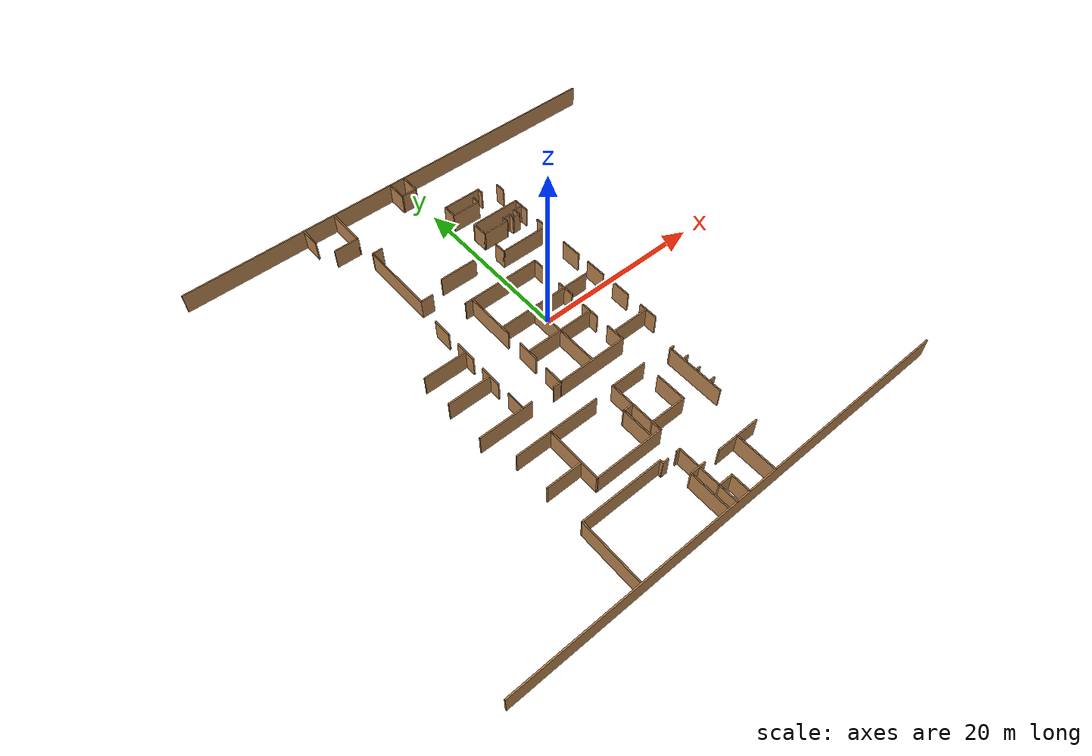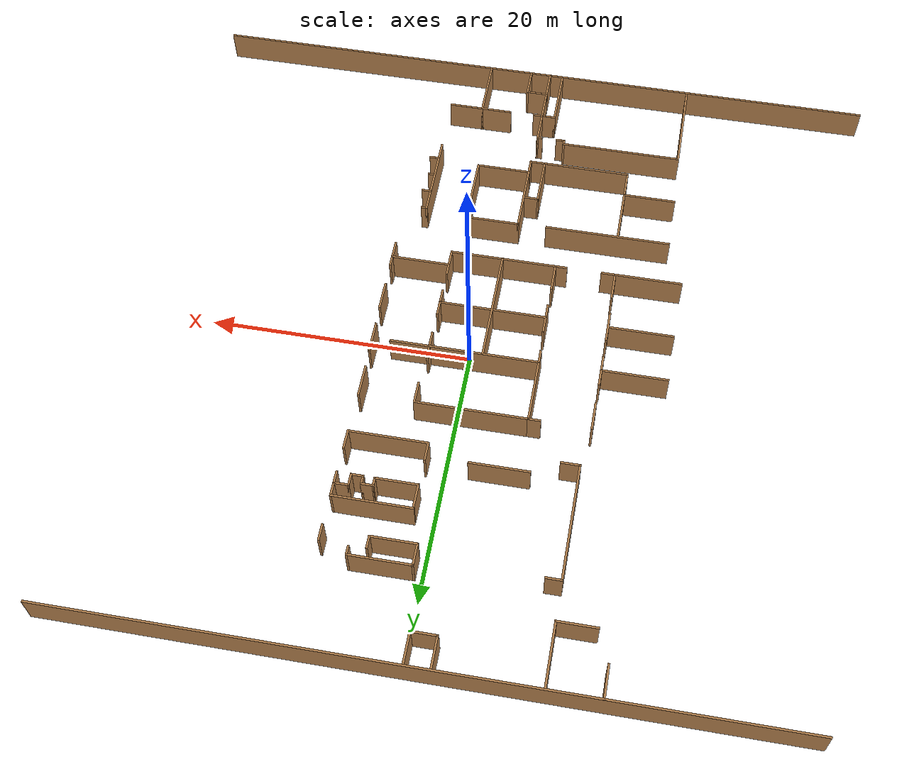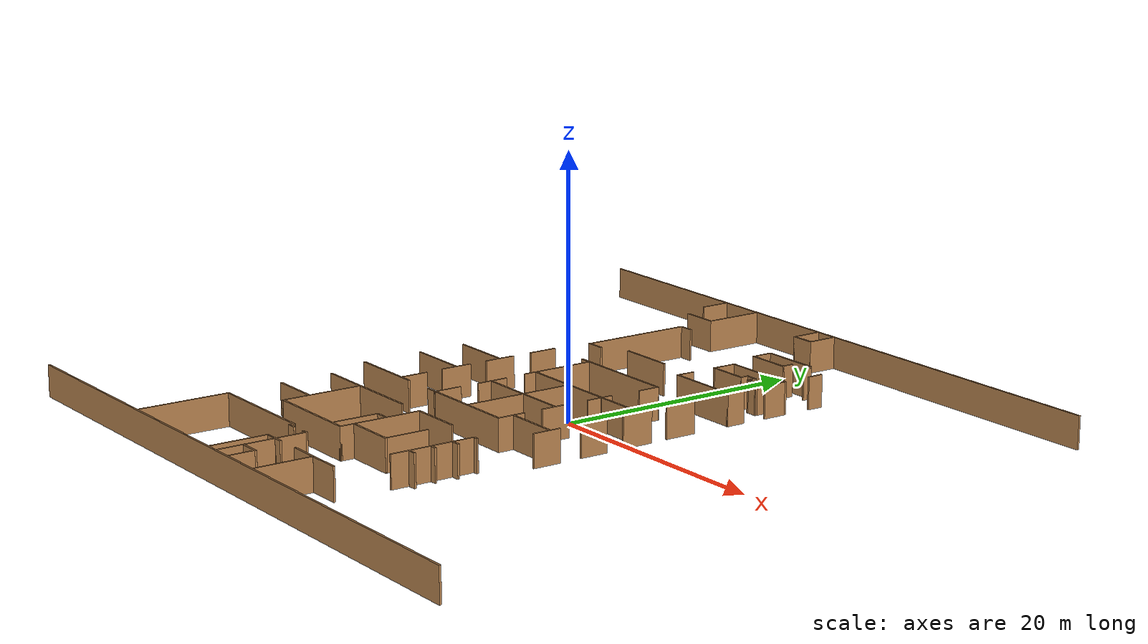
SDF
<sdf version="1.6">
 <model name="floor_plan">
  <pose>-1.19231 -1.13475 0 0 -0 0</pose>
  <link name="Wall_132">
   <collision name="Wall_132_Collision">
    <geometry><box><size>1.5 0.15 2.5</size></box></geometry>
    <pose>0 0 1.25 0 -0 0</pose>
   </collision>
   <visual name="Wall_132_Visual">
    <pose>0 0 1.25 0 -0 0</pose>
    <geometry><box><size>1.5 0.15 2.5</size></box></geometry>
    <material>
     <script><uri>file://media/materials/scripts/gazebo.material</uri><name>Gazebo/Wood</name></script>
     <ambient>1 1 1 1</ambient>
    </material>
   </visual>
   <pose>2.5583 10.705 0 0 0 -1.5708</pose>
  </link>
  <link name="Wall_133">
   <collision name="Wall_133_Collision">
    <geometry><box><size>6 0.15 2.5</size></box></geometry>
    <pose>0 0 1.25 0 -0 0</pose>
   </collision>
   <visual name="Wall_133_Visual">
    <pose>0 0 1.25 0 -0 0</pose>
    <geometry><box><size>6 0.15 2.5</size></box></geometry>
    <material>
     <script><uri>file://media/materials/scripts/gazebo.material</uri><name>Gazebo/Wood</name></script>
     <ambient>1 1 1 1</ambient>
    </material>
   </visual>
   <pose>5.4833 10.03 0 0 -0 0</pose>
  </link>
  <link name="Wall_134">
   <collision name="Wall_134_Collision">
    <geometry><box><size>1.5 0.15 2.5</size></box></geometry>
    <pose>0 0 1.25 0 -0 0</pose>
   </collision>
   <visual name="Wall_134_Visual">
    <pose>0 0 1.25 0 -0 0</pose>
    <geometry><box><size>1.5 0.15 2.5</size></box></geometry>
    <material>
     <script><uri>file://media/materials/scripts/gazebo.material</uri><name>Gazebo/Wood</name></script>
     <ambient>1 1 1 1</ambient>
    </material>
   </visual>
   <pose>8.4083 10.705 0 0 -0 1.5708</pose>
  </link>
  <link name="Wall_136">
   <collision name="Wall_136_Collision">
    <geometry><box><size>4.5 0.15 2.5</size></box></geometry>
    <pose>0 0 1.25 0 -0 0</pose>
   </collision>
   <visual name="Wall_136_Visual">
    <pose>0 0 1.25 0 -0 0</pose>
    <geometry><box><size>4.5 0.15 2.5</size></box></geometry>
    <material>
     <script><uri>file://media/materials/scripts/gazebo.material</uri><name>Gazebo/Wood</name></script>
     <ambient>1 1 1 1</ambient>
    </material>
   </visual>
   <pose>-2.72059 11.0775 0 0 -0 0</pose>
  </link>
  <link name="Wall_138">
   <collision name="Wall_138_Collision">
    <geometry><box><size>1.25 0.15 2.5</size></box></geometry>
    <pose>0 0 1.25 0 -0 0</pose>
   </collision>
   <visual name="Wall_138_Visual">
    <pose>0 0 1.25 0 -0 0</pose>
    <geometry><box><size>1.25 0.15 2.5</size></box></geometry>
    <material>
     <script><uri>file://media/materials/scripts/gazebo.material</uri><name>Gazebo/Wood</name></script>
     <ambient>1 1 1 1</ambient>
    </material>
   </visual>
   <pose>-7.75979 18.8072 0 0 -0 3.14159</pose>
  </link>
  <link name="Wall_139">
   <collision name="Wall_139_Collision">
    <geometry><box><size>9 0.15 2.5</size></box></geometry>
    <pose>0 0 1.25 0 -0 0</pose>
   </collision>
   <visual name="Wall_139_Visual">
    <pose>0 0 1.25 0 -0 0</pose>
    <geometry><box><size>9 0.15 2.5</size></box></geometry>
    <material>
     <script><uri>file://media/materials/scripts/gazebo.material</uri><name>Gazebo/Wood</name></script>
     <ambient>1 1 1 1</ambient>
    </material>
   </visual>
   <pose>-8.30979 14.3822 0 0 0 -1.5708</pose>
  </link>
  <link name="Wall_140">
   <collision name="Wall_140_Collision">
    <geometry><box><size>1.5 0.15 2.5</size></box></geometry>
    <pose>0 0 1.25 0 -0 0</pose>
   </collision>
   <visual name="Wall_140_Visual">
    <pose>0 0 1.25 0 -0 0</pose>
    <geometry><box><size>1.5 0.15 2.5</size></box></geometry>
    <material>
     <script><uri>file://media/materials/scripts/gazebo.material</uri><name>Gazebo/Wood</name></script>
     <ambient>1 1 1 1</ambient>
    </material>
   </visual>
   <pose>-7.63479 9.95716 0 0 -0 0</pose>
  </link>
  <link name="Wall_21">
   <collision name="Wall_21_Collision">
    <geometry><box><size>53.5 0.15 2.5</size></box></geometry>
    <pose>0 0 1.25 0 -0 0</pose>
   </collision>
   <visual name="Wall_21_Visual">
    <pose>0 0 1.25 0 -0 0</pose>
    <geometry><box><size>53.5 0.15 2.5</size></box></geometry>
    <material>
     <script><uri>file://media/materials/scripts/gazebo.material</uri><name>Gazebo/Wood</name></script>
     <ambient>1 1 1 1</ambient>
    </material>
   </visual>
   <pose>0.125 -26.4786 0 0 -0 3.14159</pose>
  </link>
  <link name="Wall_300">
   <collision name="Wall_300_Collision">
    <geometry><box><size>4.75 0.15 2.5</size></box></geometry>
    <pose>0 0 1.25 0 -0 0</pose>
   </collision>
   <visual name="Wall_300_Visual">
    <pose>0 0 1.25 0 -0 0</pose>
    <geometry><box><size>4.75 0.15 2.5</size></box></geometry>
    <material>
     <script><uri>file://media/materials/scripts/gazebo.material</uri><name>Gazebo/Wood</name></script>
     <ambient>1 1 1 1</ambient>
    </material>
   </visual>
   <pose>4.29396 -24.1538 0 0 -0 1.5708</pose>
  </link>
  <link name="Wall_302">
   <collision name="Wall_302_Collision">
    <geometry><box><size>2.5 0.15 2.5</size></box></geometry>
    <pose>0 0 1.25 0 -0 0</pose>
   </collision>
   <visual name="Wall_302_Visual">
    <pose>0 0 1.25 0 -0 0</pose>
    <geometry><box><size>2.5 0.15 2.5</size></box></geometry>
    <material>
     <script><uri>file://media/materials/scripts/gazebo.material</uri><name>Gazebo/Wood</name></script>
     <ambient>1 1 1 1</ambient>
    </material>
   </visual>
   <pose>3.11896 -21.8538 0 0 -0 3.14159</pose>
  </link>
  <link name="Wall_304">
   <collision name="Wall_304_Collision">
    <geometry><box><size>2.75 0.15 2.5</size></box></geometry>
    <pose>0 0 1.25 0 -0 0</pose>
   </collision>
   <visual name="Wall_304_Visual">
    <pose>0 0 1.25 0 -0 0</pose>
    <geometry><box><size>2.75 0.15 2.5</size></box></geometry>
    <material>
     <script><uri>file://media/materials/scripts/gazebo.material</uri><name>Gazebo/Wood</name></script>
     <ambient>1 1 1 1</ambient>
    </material>
   </visual>
   <pose>5.59396 -21.8538 0 0 -0 0</pose>
  </link>
  <link name="Wall_307">
   <collision name="Wall_307_Collision">
    <geometry><box><size>2.25 0.15 2.5</size></box></geometry>
    <pose>0 0 1.25 0 -0 0</pose>
   </collision>
   <visual name="Wall_307_Visual">
    <pose>0 0 1.25 0 -0 0</pose>
    <geometry><box><size>2.25 0.15 2.5</size></box></geometry>
    <material>
     <script><uri>file://media/materials/scripts/gazebo.material</uri><name>Gazebo/Wood</name></script>
     <ambient>1 1 1 1</ambient>
    </material>
   </visual>
   <pose>0.897617 -25.3855 0 0 -0 1.5708</pose>
  </link>
  <link name="Wall_308">
   <collision name="Wall_308_Collision">
    <geometry><box><size>1.75 0.15 2.5</size></box></geometry>
    <pose>0 0 1.25 0 -0 0</pose>
   </collision>
   <visual name="Wall_308_Visual">
    <pose>0 0 1.25 0 -0 0</pose>
    <geometry><box><size>1.75 0.15 2.5</size></box></geometry>
    <material>
     <script><uri>file://media/materials/scripts/gazebo.material</uri><name>Gazebo/Wood</name></script>
     <ambient>1 1 1 1</ambient>
    </material>
   </visual>
   <pose>0.097617 -24.3355 0 0 -0 3.14159</pose>
  </link>
  <link name="Wall_309">
   <collision name="Wall_309_Collision">
    <geometry><box><size>2.25 0.15 2.5</size></box></geometry>
    <pose>0 0 1.25 0 -0 0</pose>
   </collision>
   <visual name="Wall_309_Visual">
    <pose>0 0 1.25 0 -0 0</pose>
    <geometry><box><size>2.25 0.15 2.5</size></box></geometry>
    <material>
     <script><uri>file://media/materials/scripts/gazebo.material</uri><name>Gazebo/Wood</name></script>
     <ambient>1 1 1 1</ambient>
    </material>
   </visual>
   <pose>-0.702384 -25.3855 0 0 0 -1.5708</pose>
  </link>
  <link name="Wall_311">
   <collision name="Wall_311_Collision">
    <geometry><box><size>5 0.15 2.5</size></box></geometry>
    <pose>0 0 1.25 0 -0 0</pose>
   </collision>
   <visual name="Wall_311_Visual">
    <pose>0 0 1.25 0 -0 0</pose>
    <geometry><box><size>5 0.15 2.5</size></box></geometry>
    <material>
     <script><uri>file://media/materials/scripts/gazebo.material</uri><name>Gazebo/Wood</name></script>
     <ambient>1 1 1 1</ambient>
    </material>
   </visual>
   <pose>-0.702384 -21.9105 0 0 -0 1.5708</pose>
  </link>
  <link name="Wall_312">
   <collision name="Wall_312_Collision">
    <geometry><box><size>0.5 0.15 2.5</size></box></geometry>
    <pose>0 0 1.25 0 -0 0</pose>
   </collision>
   <visual name="Wall_312_Visual">
    <pose>0 0 1.25 0 -0 0</pose>
    <geometry><box><size>0.5 0.15 2.5</size></box></geometry>
    <material>
     <script><uri>file://media/materials/scripts/gazebo.material</uri><name>Gazebo/Wood</name></script>
     <ambient>1 1 1 1</ambient>
    </material>
   </visual>
   <pose>-0.877383 -19.4855 0 0 -0 3.14159</pose>
  </link>
  <link name="Wall_314">
   <collision name="Wall_314_Collision">
    <geometry><box><size>0.75 0.15 2.5</size></box></geometry>
    <pose>0 0 1.25 0 -0 0</pose>
   </collision>
   <visual name="Wall_314_Visual">
    <pose>0 0 1.25 0 -0 0</pose>
    <geometry><box><size>0.75 0.15 2.5</size></box></geometry>
    <material>
     <script><uri>file://media/materials/scripts/gazebo.material</uri><name>Gazebo/Wood</name></script>
     <ambient>1 1 1 1</ambient>
    </material>
   </visual>
   <pose>-2.59679 -19.5326 0 0 -0 3.14159</pose>
  </link>
  <link name="Wall_315">
   <collision name="Wall_315_Collision">
    <geometry><box><size>0.5 0.15 2.5</size></box></geometry>
    <pose>0 0 1.25 0 -0 0</pose>
   </collision>
   <visual name="Wall_315_Visual">
    <pose>0 0 1.25 0 -0 0</pose>
    <geometry><box><size>0.5 0.15 2.5</size></box></geometry>
    <material>
     <script><uri>file://media/materials/scripts/gazebo.material</uri><name>Gazebo/Wood</name></script>
     <ambient>1 1 1 1</ambient>
    </material>
   </visual>
   <pose>-2.89679 -19.3576 0 0 -0 1.5708</pose>
  </link>
  <link name="Wall_316">
   <collision name="Wall_316_Collision">
    <geometry><box><size>9.5 0.15 2.5</size></box></geometry>
    <pose>0 0 1.25 0 -0 0</pose>
   </collision>
   <visual name="Wall_316_Visual">
    <pose>0 0 1.25 0 -0 0</pose>
    <geometry><box><size>9.5 0.15 2.5</size></box></geometry>
    <material>
     <script><uri>file://media/materials/scripts/gazebo.material</uri><name>Gazebo/Wood</name></script>
     <ambient>1 1 1 1</ambient>
    </material>
   </visual>
   <pose>-7.57179 -19.1826 0 0 -0 3.14159</pose>
  </link>
  <link name="Wall_317">
   <collision name="Wall_317_Collision">
    <geometry><box><size>7.4 0.15 2.5</size></box></geometry>
    <pose>0 0 1.25 0 -0 0</pose>
   </collision>
   <visual name="Wall_317_Visual">
    <pose>0 0 1.25 0 -0 0</pose>
    <geometry><box><size>7.4 0.15 2.5</size></box></geometry>
    <material>
     <script><uri>file://media/materials/scripts/gazebo.material</uri><name>Gazebo/Wood</name></script>
     <ambient>1 1 1 1</ambient>
    </material>
   </visual>
   <pose>-12.2468 -22.8076 0 0 0 -1.5708</pose>
  </link>
  <link name="Wall_319">
   <collision name="Wall_319_Collision">
    <geometry><box><size>0.75 0.15 2.5</size></box></geometry>
    <pose>0 0 1.25 0 -0 0</pose>
   </collision>
   <visual name="Wall_319_Visual">
    <pose>0 0 1.25 0 -0 0</pose>
    <geometry><box><size>0.75 0.15 2.5</size></box></geometry>
    <material>
     <script><uri>file://media/materials/scripts/gazebo.material</uri><name>Gazebo/Wood</name></script>
     <ambient>1 1 1 1</ambient>
    </material>
   </visual>
   <pose>-0.344509 -21.9009 0 0 -0 0</pose>
  </link>
  <link name="Wall_400">
   <collision name="Wall_400_Collision">
    <geometry><box><size>0.5 0.15 2.5</size></box></geometry>
    <pose>0 0 1.25 0 -0 0</pose>
   </collision>
   <visual name="Wall_400_Visual">
    <pose>0 0 1.25 0 -0 0</pose>
    <geometry><box><size>0.5 0.15 2.5</size></box></geometry>
    <material>
     <script><uri>file://media/materials/scripts/gazebo.material</uri><name>Gazebo/Wood</name></script>
     <ambient>1 1 1 1</ambient>
    </material>
   </visual>
   <pose>7.00594 -10.7748 0 0 -0 3.14159</pose>
  </link>
  <link name="Wall_401">
   <collision name="Wall_401_Collision">
    <geometry><box><size>6.75 0.15 2.5</size></box></geometry>
    <pose>0 0 1.25 0 -0 0</pose>
   </collision>
   <visual name="Wall_401_Visual">
    <pose>0 0 1.25 0 -0 0</pose>
    <geometry><box><size>6.75 0.15 2.5</size></box></geometry>
    <material>
     <script><uri>file://media/materials/scripts/gazebo.material</uri><name>Gazebo/Wood</name></script>
     <ambient>1 1 1 1</ambient>
    </material>
   </visual>
   <pose>6.83094 -14.0748 0 0 0 -1.5708</pose>
  </link>
  <link name="Wall_403">
   <collision name="Wall_403_Collision">
    <geometry><box><size>0.75 0.15 2.5</size></box></geometry>
    <pose>0 0 1.25 0 -0 0</pose>
   </collision>
   <visual name="Wall_403_Visual">
    <pose>0 0 1.25 0 -0 0</pose>
    <geometry><box><size>0.75 0.15 2.5</size></box></geometry>
    <material>
     <script><uri>file://media/materials/scripts/gazebo.material</uri><name>Gazebo/Wood</name></script>
     <ambient>1 1 1 1</ambient>
    </material>
   </visual>
   <pose>7.16166 -12.4989 0 0 -0 0</pose>
  </link>
  <link name="Wall_406">
   <collision name="Wall_406_Collision">
    <geometry><box><size>0.75 0.15 2.5</size></box></geometry>
    <pose>0 0 1.25 0 -0 0</pose>
   </collision>
   <visual name="Wall_406_Visual">
    <pose>0 0 1.25 0 -0 0</pose>
    <geometry><box><size>0.75 0.15 2.5</size></box></geometry>
    <material>
     <script><uri>file://media/materials/scripts/gazebo.material</uri><name>Gazebo/Wood</name></script>
     <ambient>1 1 1 1</ambient>
    </material>
   </visual>
   <pose>7.19359 -15.9791 0 0 -0 0</pose>
  </link>
  <link name="Wall_408">
   <collision name="Wall_408_Collision">
    <geometry><box><size>0.5 0.15 2.5</size></box></geometry>
    <pose>0 0 1.25 0 -0 0</pose>
   </collision>
   <visual name="Wall_408_Visual">
    <pose>0 0 1.25 0 -0 0</pose>
    <geometry><box><size>0.5 0.15 2.5</size></box></geometry>
    <material>
     <script><uri>file://media/materials/scripts/gazebo.material</uri><name>Gazebo/Wood</name></script>
     <ambient>1 1 1 1</ambient>
    </material>
   </visual>
   <pose>7.13244 -14.2231 0 0 -0 0</pose>
  </link>
  <link name="Wall_464">
   <collision name="Wall_464_Collision">
    <geometry><box><size>2.5 0.15 2.5</size></box></geometry>
    <pose>0 0 1.25 0 -0 0</pose>
   </collision>
   <visual name="Wall_464_Visual">
    <pose>0 0 1.25 0 -0 0</pose>
    <geometry><box><size>2.5 0.15 2.5</size></box></geometry>
    <material>
     <script><uri>file://media/materials/scripts/gazebo.material</uri><name>Gazebo/Wood</name></script>
     <ambient>1 1 1 1</ambient>
    </material>
   </visual>
   <pose>8.34426 5.73154 0 0 0 -1.5708</pose>
  </link>
  <link name="Wall_466">
   <collision name="Wall_466_Collision">
    <geometry><box><size>2.5 0.15 2.5</size></box></geometry>
    <pose>0 0 1.25 0 -0 0</pose>
   </collision>
   <visual name="Wall_466_Visual">
    <pose>0 0 1.25 0 -0 0</pose>
    <geometry><box><size>2.5 0.15 2.5</size></box></geometry>
    <material>
     <script><uri>file://media/materials/scripts/gazebo.material</uri><name>Gazebo/Wood</name></script>
     <ambient>1 1 1 1</ambient>
    </material>
   </visual>
   <pose>8.3942 1.87502 0 0 0 -1.5708</pose>
  </link>
  <link name="Wall_468">
   <collision name="Wall_468_Collision">
    <geometry><box><size>2.25 0.15 2.5</size></box></geometry>
    <pose>0 0 1.25 0 -0 0</pose>
   </collision>
   <visual name="Wall_468_Visual">
    <pose>0 0 1.25 0 -0 0</pose>
    <geometry><box><size>2.25 0.15 2.5</size></box></geometry>
    <material>
     <script><uri>file://media/materials/scripts/gazebo.material</uri><name>Gazebo/Wood</name></script>
     <ambient>1 1 1 1</ambient>
    </material>
   </visual>
   <pose>8.45806 -1.92713 0 0 0 -1.5708</pose>
  </link>
  <link name="Wall_470">
   <collision name="Wall_470_Collision">
    <geometry><box><size>2.25 0.15 2.5</size></box></geometry>
    <pose>0 0 1.25 0 -0 0</pose>
   </collision>
   <visual name="Wall_470_Visual">
    <pose>0 0 1.25 0 -0 0</pose>
    <geometry><box><size>2.25 0.15 2.5</size></box></geometry>
    <material>
     <script><uri>file://media/materials/scripts/gazebo.material</uri><name>Gazebo/Wood</name></script>
     <ambient>1 1 1 1</ambient>
    </material>
   </visual>
   <pose>8.48999 -5.91814 0 0 0 -1.5708</pose>
  </link>
  <link name="Wall_477">
   <collision name="Wall_477_Collision">
    <geometry><box><size>2.25 0.15 2.5</size></box></geometry>
    <pose>0 0 1.25 0 -0 0</pose>
   </collision>
   <visual name="Wall_477_Visual">
    <pose>0 0 1.25 0 -0 0</pose>
    <geometry><box><size>2.25 0.15 2.5</size></box></geometry>
    <material>
     <script><uri>file://media/materials/scripts/gazebo.material</uri><name>Gazebo/Wood</name></script>
     <ambient>1 1 1 1</ambient>
    </material>
   </visual>
   <pose>4.05199 -5.82235 0 0 0 -1.5708</pose>
  </link>
  <link name="Wall_478">
   <collision name="Wall_478_Collision">
    <geometry><box><size>8.25 0.15 2.5</size></box></geometry>
    <pose>0 0 1.25 0 -0 0</pose>
   </collision>
   <visual name="Wall_478_Visual">
    <pose>0 0 1.25 0 -0 0</pose>
    <geometry><box><size>8.25 0.15 2.5</size></box></geometry>
    <material>
     <script><uri>file://media/materials/scripts/gazebo.material</uri><name>Gazebo/Wood</name></script>
     <ambient>1 1 1 1</ambient>
    </material>
   </visual>
   <pose>0.001989 -6.87235 0 0 -0 3.14159</pose>
  </link>
  <link name="Wall_479">
   <collision name="Wall_479_Collision">
    <geometry><box><size>2.25 0.15 2.5</size></box></geometry>
    <pose>0 0 1.25 0 -0 0</pose>
   </collision>
   <visual name="Wall_479_Visual">
    <pose>0 0 1.25 0 -0 0</pose>
    <geometry><box><size>2.25 0.15 2.5</size></box></geometry>
    <material>
     <script><uri>file://media/materials/scripts/gazebo.material</uri><name>Gazebo/Wood</name></script>
     <ambient>1 1 1 1</ambient>
    </material>
   </visual>
   <pose>-4.04801 -5.82235 0 0 -0 1.5708</pose>
  </link>
  <link name="Wall_481">
   <collision name="Wall_481_Collision">
    <geometry><box><size>2.25 0.15 2.5</size></box></geometry>
    <pose>0 0 1.25 0 -0 0</pose>
   </collision>
   <visual name="Wall_481_Visual">
    <pose>0 0 1.25 0 -0 0</pose>
    <geometry><box><size>2.25 0.15 2.5</size></box></geometry>
    <material>
     <script><uri>file://media/materials/scripts/gazebo.material</uri><name>Gazebo/Wood</name></script>
     <ambient>1 1 1 1</ambient>
    </material>
   </visual>
   <pose>4.05199 -2.06209 0 0 -0 1.5708</pose>
  </link>
  <link name="Wall_483">
   <collision name="Wall_483_Collision">
    <geometry><box><size>1.25 0.15 2.5</size></box></geometry>
    <pose>0 0 1.25 0 -0 0</pose>
   </collision>
   <visual name="Wall_483_Visual">
    <pose>0 0 1.25 0 -0 0</pose>
    <geometry><box><size>1.25 0.15 2.5</size></box></geometry>
    <material>
     <script><uri>file://media/materials/scripts/gazebo.material</uri><name>Gazebo/Wood</name></script>
     <ambient>1 1 1 1</ambient>
    </material>
   </visual>
   <pose>4.08392 1.33313 0 0 -0 1.5708</pose>
  </link>
  <link name="Wall_487">
   <collision name="Wall_487_Collision">
    <geometry><box><size>2.5 0.15 2.5</size></box></geometry>
    <pose>0 0 1.25 0 -0 0</pose>
   </collision>
   <visual name="Wall_487_Visual">
    <pose>0 0 1.25 0 -0 0</pose>
    <geometry><box><size>2.5 0.15 2.5</size></box></geometry>
    <material>
     <script><uri>file://media/materials/scripts/gazebo.material</uri><name>Gazebo/Wood</name></script>
     <ambient>1 1 1 1</ambient>
    </material>
   </visual>
   <pose>-4.02581 -1.96902 0 0 -0 1.5708</pose>
  </link>
  <link name="Wall_489">
   <collision name="Wall_489_Collision">
    <geometry><box><size>6 0.15 2.5</size></box></geometry>
    <pose>0 0 1.25 0 -0 0</pose>
   </collision>
   <visual name="Wall_489_Visual">
    <pose>0 0 1.25 0 -0 0</pose>
    <geometry><box><size>6 0.15 2.5</size></box></geometry>
    <material>
     <script><uri>file://media/materials/scripts/gazebo.material</uri><name>Gazebo/Wood</name></script>
     <ambient>1 1 1 1</ambient>
    </material>
   </visual>
   <pose>-4.12159 3.93162 0 0 -0 1.5708</pose>
  </link>
  <link name="Wall_490">
   <collision name="Wall_490_Collision">
    <geometry><box><size>8.5 0.15 2.5</size></box></geometry>
    <pose>0 0 1.25 0 -0 0</pose>
   </collision>
   <visual name="Wall_490_Visual">
    <pose>0 0 1.25 0 -0 0</pose>
    <geometry><box><size>8.5 0.15 2.5</size></box></geometry>
    <material>
     <script><uri>file://media/materials/scripts/gazebo.material</uri><name>Gazebo/Wood</name></script>
     <ambient>1 1 1 1</ambient>
    </material>
   </visual>
   <pose>0.053406 6.85663 0 0 -0 0</pose>
  </link>
  <link name="Wall_491">
   <collision name="Wall_491_Collision">
    <geometry><box><size>1.75 0.15 2.5</size></box></geometry>
    <pose>0 0 1.25 0 -0 0</pose>
   </collision>
   <visual name="Wall_491_Visual">
    <pose>0 0 1.25 0 -0 0</pose>
    <geometry><box><size>1.75 0.15 2.5</size></box></geometry>
    <material>
     <script><uri>file://media/materials/scripts/gazebo.material</uri><name>Gazebo/Wood</name></script>
     <ambient>1 1 1 1</ambient>
    </material>
   </visual>
   <pose>4.22841 6.05662 0 0 0 -1.5708</pose>
  </link>
  <link name="Wall_493">
   <collision name="Wall_493_Collision">
    <geometry><box><size>1 0.15 2.5</size></box></geometry>
    <pose>0 0 1.25 0 -0 0</pose>
   </collision>
   <visual name="Wall_493_Visual">
    <pose>0 0 1.25 0 -0 0</pose>
    <geometry><box><size>1 0.15 2.5</size></box></geometry>
    <material>
     <script><uri>file://media/materials/scripts/gazebo.material</uri><name>Gazebo/Wood</name></script>
     <ambient>1 1 1 1</ambient>
    </material>
   </visual>
   <pose>4.08392 2.30813 0 0 -0 1.5708</pose>
  </link>
  <link name="Wall_495">
   <collision name="Wall_495_Collision">
    <geometry><box><size>11.25 0.15 2.5</size></box></geometry>
    <pose>0 0 1.25 0 -0 0</pose>
   </collision>
   <visual name="Wall_495_Visual">
    <pose>0 0 1.25 0 -0 0</pose>
    <geometry><box><size>11.25 0.15 2.5</size></box></geometry>
    <material>
     <script><uri>file://media/materials/scripts/gazebo.material</uri><name>Gazebo/Wood</name></script>
     <ambient>1 1 1 1</ambient>
    </material>
   </visual>
   <pose>1.46033 1.96447 0 0 -0 0</pose>
  </link>
  <link name="Wall_498">
   <collision name="Wall_498_Collision">
    <geometry><box><size>8.15 0.15 2.5</size></box></geometry>
    <pose>0 0 1.25 0 -0 0</pose>
   </collision>
   <visual name="Wall_498_Visual">
    <pose>0 0 1.25 0 -0 0</pose>
    <geometry><box><size>8.15 0.15 2.5</size></box></geometry>
    <material>
     <script><uri>file://media/materials/scripts/gazebo.material</uri><name>Gazebo/Wood</name></script>
     <ambient>1 1 1 1</ambient>
    </material>
   </visual>
   <pose>0.006118 -2.05847 0 0 -0 0</pose>
  </link>
  <link name="Wall_500">
   <collision name="Wall_500_Collision">
    <geometry><box><size>8.9 0.15 2.5</size></box></geometry>
    <pose>0 0 1.25 0 -0 0</pose>
   </collision>
   <visual name="Wall_500_Visual">
    <pose>0 0 1.25 0 -0 0</pose>
    <geometry><box><size>8.9 0.15 2.5</size></box></geometry>
    <material>
     <script><uri>file://media/materials/scripts/gazebo.material</uri><name>Gazebo/Wood</name></script>
     <ambient>1 1 1 1</ambient>
    </material>
   </visual>
   <pose>0.079028 -2.46115 0 0 -0 1.5708</pose>
  </link>
  <link name="Wall_502">
   <collision name="Wall_502_Collision">
    <geometry><box><size>9.75 0.15 2.5</size></box></geometry>
    <pose>0 0 1.25 0 -0 0</pose>
   </collision>
   <visual name="Wall_502_Visual">
    <pose>0 0 1.25 0 -0 0</pose>
    <geometry><box><size>9.75 0.15 2.5</size></box></geometry>
    <material>
     <script><uri>file://media/materials/scripts/gazebo.material</uri><name>Gazebo/Wood</name></script>
     <ambient>1 1 1 1</ambient>
    </material>
   </visual>
   <pose>-7.61295 -10.5084 0 0 -0 0</pose>
  </link>
  <link name="Wall_506">
   <collision name="Wall_506_Collision">
    <geometry><box><size>3.5 0.15 2.5</size></box></geometry>
    <pose>0 0 1.25 0 -0 0</pose>
   </collision>
   <visual name="Wall_506_Visual">
    <pose>0 0 1.25 0 -0 0</pose>
    <geometry><box><size>3.5 0.15 2.5</size></box></geometry>
    <material>
     <script><uri>file://media/materials/scripts/gazebo.material</uri><name>Gazebo/Wood</name></script>
     <ambient>1 1 1 1</ambient>
    </material>
   </visual>
   <pose>3.53898 -14.1035 0 0 0 -1.5708</pose>
  </link>
  <link name="Wall_507">
   <collision name="Wall_507_Collision">
    <geometry><box><size>4.25 0.15 2.5</size></box></geometry>
    <pose>0 0 1.25 0 -0 0</pose>
   </collision>
   <visual name="Wall_507_Visual">
    <pose>0 0 1.25 0 -0 0</pose>
    <geometry><box><size>4.25 0.15 2.5</size></box></geometry>
    <material>
     <script><uri>file://media/materials/scripts/gazebo.material</uri><name>Gazebo/Wood</name></script>
     <ambient>1 1 1 1</ambient>
    </material>
   </visual>
   <pose>1.48898 -15.7785 0 0 -0 3.14159</pose>
  </link>
  <link name="Wall_508">
   <collision name="Wall_508_Collision">
    <geometry><box><size>1.25 0.15 2.5</size></box></geometry>
    <pose>0 0 1.25 0 -0 0</pose>
   </collision>
   <visual name="Wall_508_Visual">
    <pose>0 0 1.25 0 -0 0</pose>
    <geometry><box><size>1.25 0.15 2.5</size></box></geometry>
    <material>
     <script><uri>file://media/materials/scripts/gazebo.material</uri><name>Gazebo/Wood</name></script>
     <ambient>1 1 1 1</ambient>
    </material>
   </visual>
   <pose>-0.561019 -16.3285 0 0 0 -1.5708</pose>
  </link>
  <link name="Wall_509">
   <collision name="Wall_509_Collision">
    <geometry><box><size>8 0.15 2.5</size></box></geometry>
    <pose>0 0 1.25 0 -0 0</pose>
   </collision>
   <visual name="Wall_509_Visual">
    <pose>0 0 1.25 0 -0 0</pose>
    <geometry><box><size>8 0.15 2.5</size></box></geometry>
    <material>
     <script><uri>file://media/materials/scripts/gazebo.material</uri><name>Gazebo/Wood</name></script>
     <ambient>1 1 1 1</ambient>
    </material>
   </visual>
   <pose>-4.48602 -16.8785 0 0 -0 3.14159</pose>
  </link>
  <link name="Wall_510">
   <collision name="Wall_510_Collision">
    <geometry><box><size>6.5 0.15 2.5</size></box></geometry>
    <pose>0 0 1.25 0 -0 0</pose>
   </collision>
   <visual name="Wall_510_Visual">
    <pose>0 0 1.25 0 -0 0</pose>
    <geometry><box><size>6.5 0.15 2.5</size></box></geometry>
    <material>
     <script><uri>file://media/materials/scripts/gazebo.material</uri><name>Gazebo/Wood</name></script>
     <ambient>1 1 1 1</ambient>
    </material>
   </visual>
   <pose>-8.41102 -13.7035 0 0 -0 1.5708</pose>
  </link>
  <link name="Wall_514">
   <collision name="Wall_514_Collision">
    <geometry><box><size>4.1 0.15 2.5</size></box></geometry>
    <pose>0 0 1.25 0 -0 0</pose>
   </collision>
   <visual name="Wall_514_Visual">
    <pose>0 0 1.25 0 -0 0</pose>
    <geometry><box><size>4.1 0.15 2.5</size></box></geometry>
    <material>
     <script><uri>file://media/materials/scripts/gazebo.material</uri><name>Gazebo/Wood</name></script>
     <ambient>1 1 1 1</ambient>
    </material>
   </visual>
   <pose>-10.4175 -14.7536 0 0 -0 3.14159</pose>
  </link>
  <link name="Wall_517">
   <collision name="Wall_517_Collision">
    <geometry><box><size>5.5 0.15 2.5</size></box></geometry>
    <pose>0 0 1.25 0 -0 0</pose>
   </collision>
   <visual name="Wall_517_Visual">
    <pose>0 0 1.25 0 -0 0</pose>
    <geometry><box><size>5.5 0.15 2.5</size></box></geometry>
    <material>
     <script><uri>file://media/materials/scripts/gazebo.material</uri><name>Gazebo/Wood</name></script>
     <ambient>1 1 1 1</ambient>
    </material>
   </visual>
   <pose>-0.561019 -13.1035 0 0 -0 1.5708</pose>
  </link>
  <link name="Wall_518">
   <collision name="Wall_518_Collision">
    <geometry><box><size>4.25 0.15 2.5</size></box></geometry>
    <pose>0 0 1.25 0 -0 0</pose>
   </collision>
   <visual name="Wall_518_Visual">
    <pose>0 0 1.25 0 -0 0</pose>
    <geometry><box><size>4.25 0.15 2.5</size></box></geometry>
    <material>
     <script><uri>file://media/materials/scripts/gazebo.material</uri><name>Gazebo/Wood</name></script>
     <ambient>1 1 1 1</ambient>
    </material>
   </visual>
   <pose>1.48898 -10.4285 0 0 -0 0</pose>
  </link>
  <link name="Wall_521">
   <collision name="Wall_521_Collision">
    <geometry><box><size>3.75 0.15 2.5</size></box></geometry>
    <pose>0 0 1.25 0 -0 0</pose>
   </collision>
   <visual name="Wall_521_Visual">
    <pose>0 0 1.25 0 -0 0</pose>
    <geometry><box><size>3.75 0.15 2.5</size></box></geometry>
    <material>
     <script><uri>file://media/materials/scripts/gazebo.material</uri><name>Gazebo/Wood</name></script>
     <ambient>1 1 1 1</ambient>
    </material>
   </visual>
   <pose>-1.68838 -14.9663 0 0 0 -1.5708</pose>
  </link>
  <link name="Wall_523">
   <collision name="Wall_523_Collision">
    <geometry><box><size>1.25 0.15 2.5</size></box></geometry>
    <pose>0 0 1.25 0 -0 0</pose>
   </collision>
   <visual name="Wall_523_Visual">
    <pose>0 0 1.25 0 -0 0</pose>
    <geometry><box><size>1.25 0.15 2.5</size></box></geometry>
    <material>
     <script><uri>file://media/materials/scripts/gazebo.material</uri><name>Gazebo/Wood</name></script>
     <ambient>1 1 1 1</ambient>
    </material>
   </visual>
   <pose>-1.13838 -13.1663 0 0 -0 0</pose>
  </link>
  <link name="Wall_525">
   <collision name="Wall_525_Collision">
    <geometry><box><size>1 0.15 2.5</size></box></geometry>
    <pose>0 0 1.25 0 -0 0</pose>
   </collision>
   <visual name="Wall_525_Visual">
    <pose>0 0 1.25 0 -0 0</pose>
    <geometry><box><size>1 0.15 2.5</size></box></geometry>
    <material>
     <script><uri>file://media/materials/scripts/gazebo.material</uri><name>Gazebo/Wood</name></script>
     <ambient>1 1 1 1</ambient>
    </material>
   </visual>
   <pose>-4.54659 6.85663 0 0 -0 3.14159</pose>
  </link>
  <link name="Wall_565">
   <collision name="Wall_565_Collision">
    <geometry><box><size>6.25 0.15 2.5</size></box></geometry>
    <pose>0 0 1.25 0 -0 0</pose>
   </collision>
   <visual name="Wall_565_Visual">
    <pose>0 0 1.25 0 -0 0</pose>
    <geometry><box><size>6.25 0.15 2.5</size></box></geometry>
    <material>
     <script><uri>file://media/materials/scripts/gazebo.material</uri><name>Gazebo/Wood</name></script>
     <ambient>1 1 1 1</ambient>
    </material>
   </visual>
   <pose>-10.7101 -6.86803 0 0 -0 0</pose>
  </link>
  <link name="Wall_567">
   <collision name="Wall_567_Collision">
    <geometry><box><size>1 0.15 2.5</size></box></geometry>
    <pose>0 0 1.25 0 -0 0</pose>
   </collision>
   <visual name="Wall_567_Visual">
    <pose>0 0 1.25 0 -0 0</pose>
    <geometry><box><size>1 0.15 2.5</size></box></geometry>
    <material>
     <script><uri>file://media/materials/scripts/gazebo.material</uri><name>Gazebo/Wood</name></script>
     <ambient>1 1 1 1</ambient>
    </material>
   </visual>
   <pose>-4.47301 -6.87235 0 0 -0 3.14159</pose>
  </link>
  <link name="Wall_570">
   <collision name="Wall_570_Collision">
    <geometry><box><size>2.25 0.15 2.5</size></box></geometry>
    <pose>0 0 1.25 0 -0 0</pose>
   </collision>
   <visual name="Wall_570_Visual">
    <pose>0 0 1.25 0 -0 0</pose>
    <geometry><box><size>2.25 0.15 2.5</size></box></geometry>
    <material>
     <script><uri>file://media/materials/scripts/gazebo.material</uri><name>Gazebo/Wood</name></script>
     <ambient>1 1 1 1</ambient>
    </material>
   </visual>
   <pose>-8.718 5.79857 0 0 0 -1.5708</pose>
  </link>
  <link name="Wall_572">
   <collision name="Wall_572_Collision">
    <geometry><box><size>2.5 0.15 2.5</size></box></geometry>
    <pose>0 0 1.25 0 -0 0</pose>
   </collision>
   <visual name="Wall_572_Visual">
    <pose>0 0 1.25 0 -0 0</pose>
    <geometry><box><size>2.5 0.15 2.5</size></box></geometry>
    <material>
     <script><uri>file://media/materials/scripts/gazebo.material</uri><name>Gazebo/Wood</name></script>
     <ambient>1 1 1 1</ambient>
    </material>
   </visual>
   <pose>-8.74202 1.91202 0 0 0 -1.5708</pose>
  </link>
  <link name="Wall_574">
   <collision name="Wall_574_Collision">
    <geometry><box><size>2.5 0.15 2.5</size></box></geometry>
    <pose>0 0 1.25 0 -0 0</pose>
   </collision>
   <visual name="Wall_574_Visual">
    <pose>0 0 1.25 0 -0 0</pose>
    <geometry><box><size>2.5 0.15 2.5</size></box></geometry>
    <material>
     <script><uri>file://media/materials/scripts/gazebo.material</uri><name>Gazebo/Wood</name></script>
     <ambient>1 1 1 1</ambient>
    </material>
   </visual>
   <pose>-8.74318 -2.02448 0 0 0 -1.5708</pose>
  </link>
  <link name="Wall_579">
   <collision name="Wall_579_Collision">
    <geometry><box><size>2.25 0.15 2.5</size></box></geometry>
    <pose>0 0 1.25 0 -0 0</pose>
   </collision>
   <visual name="Wall_579_Visual">
    <pose>0 0 1.25 0 -0 0</pose>
    <geometry><box><size>2.25 0.15 2.5</size></box></geometry>
    <material>
     <script><uri>file://media/materials/scripts/gazebo.material</uri><name>Gazebo/Wood</name></script>
     <ambient>1 1 1 1</ambient>
    </material>
   </visual>
   <pose>-8.66602 -5.78721 0 0 -0 1.5708</pose>
  </link>
  <link name="Wall_581">
   <collision name="Wall_581_Collision">
    <geometry><box><size>5 0.15 2.5</size></box></geometry>
    <pose>0 0 1.25 0 -0 0</pose>
   </collision>
   <visual name="Wall_581_Visual">
    <pose>0 0 1.25 0 -0 0</pose>
    <geometry><box><size>5 0.15 2.5</size></box></geometry>
    <material>
     <script><uri>file://media/materials/scripts/gazebo.material</uri><name>Gazebo/Wood</name></script>
     <ambient>1 1 1 1</ambient>
    </material>
   </visual>
   <pose>-11.2426 -1.9871 0 0 -0 3.14159</pose>
  </link>
  <link name="Wall_583">
   <collision name="Wall_583_Collision">
    <geometry><box><size>5.05 0.15 2.5</size></box></geometry>
    <pose>0 0 1.25 0 -0 0</pose>
   </collision>
   <visual name="Wall_583_Visual">
    <pose>0 0 1.25 0 -0 0</pose>
    <geometry><box><size>5.05 0.15 2.5</size></box></geometry>
    <material>
     <script><uri>file://media/materials/scripts/gazebo.material</uri><name>Gazebo/Wood</name></script>
     <ambient>1 1 1 1</ambient>
    </material>
   </visual>
   <pose>-11.2171 1.87783 0 0 -0 3.14159</pose>
  </link>
  <link name="Wall_585">
   <collision name="Wall_585_Collision">
    <geometry><box><size>4.5 0.15 2.5</size></box></geometry>
    <pose>0 0 1.25 0 -0 0</pose>
   </collision>
   <visual name="Wall_585_Visual">
    <pose>0 0 1.25 0 -0 0</pose>
    <geometry><box><size>4.5 0.15 2.5</size></box></geometry>
    <material>
     <script><uri>file://media/materials/scripts/gazebo.material</uri><name>Gazebo/Wood</name></script>
     <ambient>1 1 1 1</ambient>
    </material>
   </visual>
   <pose>6.31447 -5.6309 0 0 -0 0</pose>
  </link>
  <link name="Wall_66">
   <collision name="Wall_66_Collision">
    <geometry><box><size>2.5 0.15 2.5</size></box></geometry>
    <pose>0 0 1.25 0 -0 0</pose>
   </collision>
   <visual name="Wall_66_Visual">
    <pose>0 0 1.25 0 -0 0</pose>
    <geometry><box><size>2.5 0.15 2.5</size></box></geometry>
    <material>
     <script><uri>file://media/materials/scripts/gazebo.material</uri><name>Gazebo/Wood</name></script>
     <ambient>1 1 1 1</ambient>
    </material>
   </visual>
   <pose>-12.1543 25.2869 0 0 -0 1.5708</pose>
  </link>
  <link name="Wall_7">
   <collision name="Wall_7_Collision">
    <geometry><box><size>53.5 0.15 2.5</size></box></geometry>
    <pose>0 0 1.25 0 -0 0</pose>
   </collision>
   <visual name="Wall_7_Visual">
    <pose>0 0 1.25 0 -0 0</pose>
    <geometry><box><size>53.5 0.15 2.5</size></box></geometry>
    <material>
     <script><uri>file://media/materials/scripts/gazebo.material</uri><name>Gazebo/Wood</name></script>
     <ambient>1 1 1 1</ambient>
    </material>
   </visual>
   <pose>0.125 26.4714 0 0 -0 0</pose>
  </link>
  <link name="Wall_70">
   <collision name="Wall_70_Collision">
    <geometry><box><size>3 0.15 2.5</size></box></geometry>
    <pose>0 0 1.25 0 -0 0</pose>
   </collision>
   <visual name="Wall_70_Visual">
    <pose>0 0 1.25 0 -0 0</pose>
    <geometry><box><size>3 0.15 2.5</size></box></geometry>
    <material>
     <script><uri>file://media/materials/scripts/gazebo.material</uri><name>Gazebo/Wood</name></script>
     <ambient>1 1 1 1</ambient>
    </material>
   </visual>
   <pose>-9.74617 21.7481 0 0 -0 0</pose>
  </link>
  <link name="Wall_71">
   <collision name="Wall_71_Collision">
    <geometry><box><size>4.75 0.15 2.5</size></box></geometry>
    <pose>0 0 1.25 0 -0 0</pose>
   </collision>
   <visual name="Wall_71_Visual">
    <pose>0 0 1.25 0 -0 0</pose>
    <geometry><box><size>4.75 0.15 2.5</size></box></geometry>
    <material>
     <script><uri>file://media/materials/scripts/gazebo.material</uri><name>Gazebo/Wood</name></script>
     <ambient>1 1 1 1</ambient>
    </material>
   </visual>
   <pose>-8.32117 24.0481 0 0 -0 1.5708</pose>
  </link>
  <link name="Wall_73">
   <collision name="Wall_73_Collision">
    <geometry><box><size>2.5 0.15 2.5</size></box></geometry>
    <pose>0 0 1.25 0 -0 0</pose>
   </collision>
   <visual name="Wall_73_Visual">
    <pose>0 0 1.25 0 -0 0</pose>
    <geometry><box><size>2.5 0.15 2.5</size></box></geometry>
    <material>
     <script><uri>file://media/materials/scripts/gazebo.material</uri><name>Gazebo/Wood</name></script>
     <ambient>1 1 1 1</ambient>
    </material>
   </visual>
   <pose>-0.840384 25.267 0 0 0 -1.5708</pose>
  </link>
  <link name="Wall_74">
   <collision name="Wall_74_Collision">
    <geometry><box><size>2 0.15 2.5</size></box></geometry>
    <pose>0 0 1.25 0 -0 0</pose>
   </collision>
   <visual name="Wall_74_Visual">
    <pose>0 0 1.25 0 -0 0</pose>
    <geometry><box><size>2 0.15 2.5</size></box></geometry>
    <material>
     <script><uri>file://media/materials/scripts/gazebo.material</uri><name>Gazebo/Wood</name></script>
     <ambient>1 1 1 1</ambient>
    </material>
   </visual>
   <pose>0.084616 24.092 0 0 -0 0</pose>
  </link>
  <link name="Wall_75">
   <collision name="Wall_75_Collision">
    <geometry><box><size>2.5 0.15 2.5</size></box></geometry>
    <pose>0 0 1.25 0 -0 0</pose>
   </collision>
   <visual name="Wall_75_Visual">
    <pose>0 0 1.25 0 -0 0</pose>
    <geometry><box><size>2.5 0.15 2.5</size></box></geometry>
    <material>
     <script><uri>file://media/materials/scripts/gazebo.material</uri><name>Gazebo/Wood</name></script>
     <ambient>1 1 1 1</ambient>
    </material>
   </visual>
   <pose>1.00962 25.267 0 0 -0 1.5708</pose>
  </link>
  <link name="Wall_752">
   <collision name="Wall_752_Collision">
    <geometry><box><size>1.25 0.15 2.5</size></box></geometry>
    <pose>0 0 1.25 0 -0 0</pose>
   </collision>
   <visual name="Wall_752_Visual">
    <pose>0 0 1.25 0 -0 0</pose>
    <geometry><box><size>1.25 0.15 2.5</size></box></geometry>
    <material>
     <script><uri>file://media/materials/scripts/gazebo.material</uri><name>Gazebo/Wood</name></script>
     <ambient>1 1 1 1</ambient>
    </material>
   </visual>
   <pose>-1.19451 -21.9009 0 0 -0 3.14159</pose>
  </link>
  <link name="Wall_755">
   <collision name="Wall_755_Collision">
    <geometry><box><size>4.65 0.15 2.5</size></box></geometry>
    <pose>0 0 1.25 0 -0 0</pose>
   </collision>
   <visual name="Wall_755_Visual">
    <pose>0 0 1.25 0 -0 0</pose>
    <geometry><box><size>4.65 0.15 2.5</size></box></geometry>
    <material>
     <script><uri>file://media/materials/scripts/gazebo.material</uri><name>Gazebo/Wood</name></script>
     <ambient>1 1 1 1</ambient>
    </material>
   </visual>
   <pose>-1.74451 -24.1509 0 0 0 -1.5708</pose>
  </link>
  <link name="Wall_812">
   <collision name="Wall_812_Collision">
    <geometry><box><size>1 0.15 2.5</size></box></geometry>
    <pose>0 0 1.25 0 -0 0</pose>
   </collision>
   <visual name="Wall_812_Visual">
    <pose>0 0 1.25 0 -0 0</pose>
    <geometry><box><size>1 0.15 2.5</size></box></geometry>
    <material>
     <script><uri>file://media/materials/scripts/gazebo.material</uri><name>Gazebo/Wood</name></script>
     <ambient>1 1 1 1</ambient>
    </material>
   </visual>
   <pose>5.12348 18.276 0 0 0 -1.5708</pose>
  </link>
  <link name="Wall_813">
   <collision name="Wall_813_Collision">
    <geometry><box><size>3.5 0.15 2.5</size></box></geometry>
    <pose>0 0 1.25 0 -0 0</pose>
   </collision>
   <visual name="Wall_813_Visual">
    <pose>0 0 1.25 0 -0 0</pose>
    <geometry><box><size>3.5 0.15 2.5</size></box></geometry>
    <material>
     <script><uri>file://media/materials/scripts/gazebo.material</uri><name>Gazebo/Wood</name></script>
     <ambient>1 1 1 1</ambient>
    </material>
   </visual>
   <pose>3.44848 17.8509 0 0 -0 3.14159</pose>
  </link>
  <link name="Wall_814">
   <collision name="Wall_814_Collision">
    <geometry><box><size>1.75 0.15 2.5</size></box></geometry>
    <pose>0 0 1.25 0 -0 0</pose>
   </collision>
   <visual name="Wall_814_Visual">
    <pose>0 0 1.25 0 -0 0</pose>
    <geometry><box><size>1.75 0.15 2.5</size></box></geometry>
    <material>
     <script><uri>file://media/materials/scripts/gazebo.material</uri><name>Gazebo/Wood</name></script>
     <ambient>1 1 1 1</ambient>
    </material>
   </visual>
   <pose>1.77348 18.651 0 0 -0 1.5708</pose>
  </link>
  <link name="Wall_815">
   <collision name="Wall_815_Collision">
    <geometry><box><size>4.75 0.15 2.5</size></box></geometry>
    <pose>0 0 1.25 0 -0 0</pose>
   </collision>
   <visual name="Wall_815_Visual">
    <pose>0 0 1.25 0 -0 0</pose>
    <geometry><box><size>4.75 0.15 2.5</size></box></geometry>
    <material>
     <script><uri>file://media/materials/scripts/gazebo.material</uri><name>Gazebo/Wood</name></script>
     <ambient>1 1 1 1</ambient>
    </material>
   </visual>
   <pose>4.07348 19.4509 0 0 -0 0</pose>
  </link>
  <link name="Wall_816">
   <collision name="Wall_816_Collision">
    <geometry><box><size>0.75 0.15 2.5</size></box></geometry>
    <pose>0 0 1.25 0 -0 0</pose>
   </collision>
   <visual name="Wall_816_Visual">
    <pose>0 0 1.25 0 -0 0</pose>
    <geometry><box><size>0.75 0.15 2.5</size></box></geometry>
    <material>
     <script><uri>file://media/materials/scripts/gazebo.material</uri><name>Gazebo/Wood</name></script>
     <ambient>1 1 1 1</ambient>
    </material>
   </visual>
   <pose>6.37348 19.151 0 0 0 -1.5708</pose>
  </link>
  <link name="Wall_818">
   <collision name="Wall_818_Collision">
    <geometry><box><size>1.25 0.15 2.5</size></box></geometry>
    <pose>0 0 1.25 0 -0 0</pose>
   </collision>
   <visual name="Wall_818_Visual">
    <pose>0 0 1.25 0 -0 0</pose>
    <geometry><box><size>1.25 0.15 2.5</size></box></geometry>
    <material>
     <script><uri>file://media/materials/scripts/gazebo.material</uri><name>Gazebo/Wood</name></script>
     <ambient>1 1 1 1</ambient>
    </material>
   </visual>
   <pose>8.48356 18.1147 0 0 0 -1.5708</pose>
  </link>
  <link name="Wall_822">
   <collision name="Wall_822_Collision">
    <geometry><box><size>2 0.15 2.5</size></box></geometry>
    <pose>0 0 1.25 0 -0 0</pose>
   </collision>
   <visual name="Wall_822_Visual">
    <pose>0 0 1.25 0 -0 0</pose>
    <geometry><box><size>2 0.15 2.5</size></box></geometry>
    <material>
     <script><uri>file://media/materials/scripts/gazebo.material</uri><name>Gazebo/Wood</name></script>
     <ambient>1 1 1 1</ambient>
    </material>
   </visual>
   <pose>8.45217 14.3405 0 0 -0 1.5708</pose>
  </link>
  <link name="Wall_823">
   <collision name="Wall_823_Collision">
    <geometry><box><size>6 0.15 2.5</size></box></geometry>
    <pose>0 0 1.25 0 -0 0</pose>
   </collision>
   <visual name="Wall_823_Visual">
    <pose>0 0 1.25 0 -0 0</pose>
    <geometry><box><size>6 0.15 2.5</size></box></geometry>
    <material>
     <script><uri>file://media/materials/scripts/gazebo.material</uri><name>Gazebo/Wood</name></script>
     <ambient>1 1 1 1</ambient>
    </material>
   </visual>
   <pose>5.52717 15.2655 0 0 -0 3.14159</pose>
  </link>
  <link name="Wall_824">
   <collision name="Wall_824_Collision">
    <geometry><box><size>2 0.15 2.5</size></box></geometry>
    <pose>0 0 1.25 0 -0 0</pose>
   </collision>
   <visual name="Wall_824_Visual">
    <pose>0 0 1.25 0 -0 0</pose>
    <geometry><box><size>2 0.15 2.5</size></box></geometry>
    <material>
     <script><uri>file://media/materials/scripts/gazebo.material</uri><name>Gazebo/Wood</name></script>
     <ambient>1 1 1 1</ambient>
    </material>
   </visual>
   <pose>2.60217 14.3405 0 0 0 -1.5708</pose>
  </link>
  <link name="Wall_825">
   <collision name="Wall_825_Collision">
    <geometry><box><size>3.25 0.15 2.5</size></box></geometry>
    <pose>0 0 1.25 0 -0 0</pose>
   </collision>
   <visual name="Wall_825_Visual">
    <pose>0 0 1.25 0 -0 0</pose>
    <geometry><box><size>3.25 0.15 2.5</size></box></geometry>
    <material>
     <script><uri>file://media/materials/scripts/gazebo.material</uri><name>Gazebo/Wood</name></script>
     <ambient>1 1 1 1</ambient>
    </material>
   </visual>
   <pose>4.15217 13.4155 0 0 -0 0</pose>
  </link>
  <link name="Wall_826">
   <collision name="Wall_826_Collision">
    <geometry><box><size>0.75 0.15 2.5</size></box></geometry>
    <pose>0 0 1.25 0 -0 0</pose>
   </collision>
   <visual name="Wall_826_Visual">
    <pose>0 0 1.25 0 -0 0</pose>
    <geometry><box><size>0.75 0.15 2.5</size></box></geometry>
    <material>
     <script><uri>file://media/materials/scripts/gazebo.material</uri><name>Gazebo/Wood</name></script>
     <ambient>1 1 1 1</ambient>
    </material>
   </visual>
   <pose>5.70217 13.7155 0 0 -0 1.5708</pose>
  </link>
  <link name="Wall_827">
   <collision name="Wall_827_Collision">
    <geometry><box><size>1 0.15 2.5</size></box></geometry>
    <pose>0 0 1.25 0 -0 0</pose>
   </collision>
   <visual name="Wall_827_Visual">
    <pose>0 0 1.25 0 -0 0</pose>
    <geometry><box><size>1 0.15 2.5</size></box></geometry>
    <material>
     <script><uri>file://media/materials/scripts/gazebo.material</uri><name>Gazebo/Wood</name></script>
     <ambient>1 1 1 1</ambient>
    </material>
   </visual>
   <pose>6.12717 14.0155 0 0 -0 0</pose>
  </link>
  <link name="Wall_828">
   <collision name="Wall_828_Collision">
    <geometry><box><size>0.75 0.15 2.5</size></box></geometry>
    <pose>0 0 1.25 0 -0 0</pose>
   </collision>
   <visual name="Wall_828_Visual">
    <pose>0 0 1.25 0 -0 0</pose>
    <geometry><box><size>0.75 0.15 2.5</size></box></geometry>
    <material>
     <script><uri>file://media/materials/scripts/gazebo.material</uri><name>Gazebo/Wood</name></script>
     <ambient>1 1 1 1</ambient>
    </material>
   </visual>
   <pose>6.55217 13.7155 0 0 0 -1.5708</pose>
  </link>
  <link name="Wall_829">
   <collision name="Wall_829_Collision">
    <geometry><box><size>1 0.15 2.5</size></box></geometry>
    <pose>0 0 1.25 0 -0 0</pose>
   </collision>
   <visual name="Wall_829_Visual">
    <pose>0 0 1.25 0 -0 0</pose>
    <geometry><box><size>1 0.15 2.5</size></box></geometry>
    <material>
     <script><uri>file://media/materials/scripts/gazebo.material</uri><name>Gazebo/Wood</name></script>
     <ambient>1 1 1 1</ambient>
    </material>
   </visual>
   <pose>6.97717 13.4155 0 0 -0 0</pose>
  </link>
  <link name="Wall_830">
   <collision name="Wall_830_Collision">
    <geometry><box><size>1 0.15 2.5</size></box></geometry>
    <pose>0 0 1.25 0 -0 0</pose>
   </collision>
   <visual name="Wall_830_Visual">
    <pose>0 0 1.25 0 -0 0</pose>
    <geometry><box><size>1 0.15 2.5</size></box></geometry>
    <material>
     <script><uri>file://media/materials/scripts/gazebo.material</uri><name>Gazebo/Wood</name></script>
     <ambient>1 1 1 1</ambient>
    </material>
   </visual>
   <pose>7.40217 13.8405 0 0 -0 1.5708</pose>
  </link>
  <link name="Wall_831">
   <collision name="Wall_831_Collision">
    <geometry><box><size>1.15 0.15 2.5</size></box></geometry>
    <pose>0 0 1.25 0 -0 0</pose>
   </collision>
   <visual name="Wall_831_Visual">
    <pose>0 0 1.25 0 -0 0</pose>
    <geometry><box><size>1.15 0.15 2.5</size></box></geometry>
    <material>
     <script><uri>file://media/materials/scripts/gazebo.material</uri><name>Gazebo/Wood</name></script>
     <ambient>1 1 1 1</ambient>
    </material>
   </visual>
   <pose>7.90217 14.2655 0 0 -0 0</pose>
  </link>
  <static>1</static>
 </model>
</sdf>
